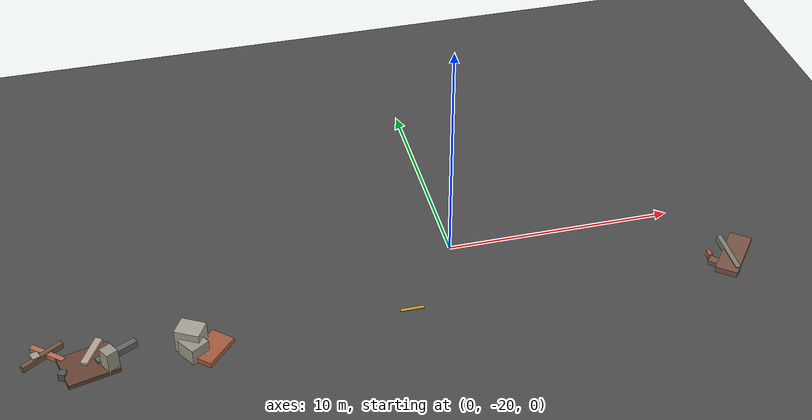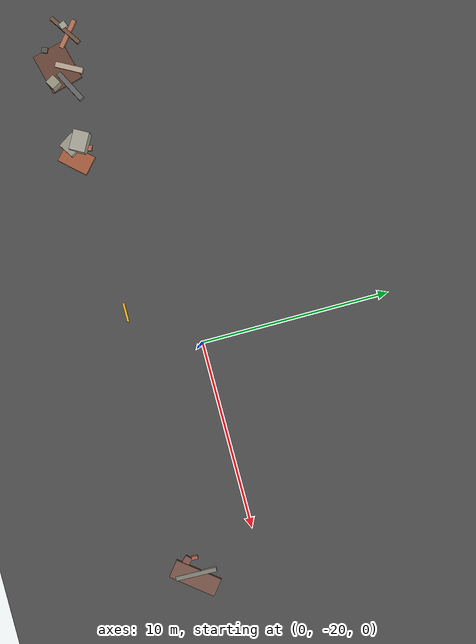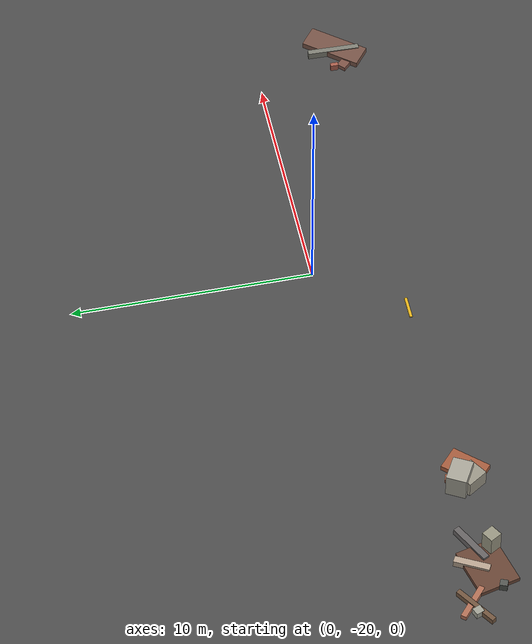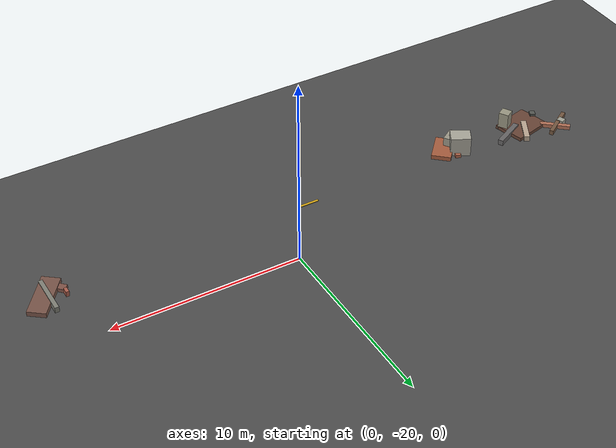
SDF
<sdf version="1.6">
 <world name="navitas_arena">
  <model name="ground_plane">
   <static>true</static>
   <link name="link">
    <collision name="collision">
     <geometry><plane><normal>0 0 1</normal><size>400 400</size></plane></geometry>
     <surface><friction><ode><mu>0.800</mu><mu2>0.800</mu2></ode></friction></surface>
    </collision>
    <visual name="visual">
     <cast_shadows>false</cast_shadows>
     <geometry><plane><normal>0 0 1</normal><size>400 400</size></plane></geometry>
     <material>
      <specular>0.04 0.04 0.04 1</specular>
      <script>
       <uri>file://media/materials/scripts/navitas_asphalt.material</uri>
       <name>Navitas/RealArenaAsphalt</name>
      </script>
     </material>
    </visual>
   </link>
  </model>
  <model name="deb_orta_24">
   <static>true</static>
   <pose>11.225 -23.474 0.000 0 0 0</pose>
   <link name="link">
    <collision name="col_0">
     <pose>0.330 0.058 0.150 0.000 0.000 1.546</pose>
     <geometry><box><size>2.159 0.222 0.301</size></box></geometry>
    </collision>
    <visual name="vis_0">
     <pose>0.330 0.058 0.150 0.000 0.000 1.546</pose>
     <geometry><box><size>2.159 0.222 0.301</size></box></geometry>
     <material>
      <ambient>0.46 0.46 0.43 1</ambient>
      <diffuse>0.50 0.50 0.46 1</diffuse>
      <specular>0.05 0.05 0.045 1</specular>
     </material>
    </visual>
    <collision name="col_1">
     <pose>-0.424 -0.251 0.099 0.000 0.000 2.346</pose>
     <geometry><box><size>0.500 0.389 0.198</size></box></geometry>
    </collision>
    <visual name="vis_1">
     <pose>-0.424 -0.251 0.099 0.000 0.000 2.346</pose>
     <geometry><box><size>0.500 0.389 0.198</size></box></geometry>
     <material>
      <ambient>0.46 0.31 0.26 1</ambient>
      <diffuse>0.50 0.33 0.28 1</diffuse>
      <specular>0.05 0.05 0.045 1</specular>
     </material>
    </visual>
    <collision name="col_2">
     <pose>0.529 -0.041 0.129 0.000 0.000 0.902</pose>
     <geometry><box><size>2.532 0.957 0.258</size></box></geometry>
    </collision>
    <visual name="vis_2">
     <pose>0.529 -0.041 0.129 0.000 0.000 0.902</pose>
     <geometry><box><size>2.532 0.957 0.258</size></box></geometry>
     <material>
      <ambient>0.44 0.31 0.26 1</ambient>
      <diffuse>0.47 0.33 0.28 1</diffuse>
      <specular>0.05 0.05 0.045 1</specular>
     </material>
    </visual>
    <collision name="col_3">
     <pose>-0.507 0.196 0.146 0.000 0.000 1.550</pose>
     <geometry><box><size>0.327 0.175 0.292</size></box></geometry>
    </collision>
    <visual name="vis_3">
     <pose>-0.507 0.196 0.146 0.000 0.000 1.550</pose>
     <geometry><box><size>0.327 0.175 0.292</size></box></geometry>
     <material>
      <ambient>0.62 0.35 0.28 1</ambient>
      <diffuse>0.67 0.37 0.30 1</diffuse>
      <specular>0.05 0.05 0.045 1</specular>
     </material>
    </visual>
   </link>
  </model>
  <model name="deb_orta_170">
   <static>true</static>
   <pose>-17.178 -23.425 0.000 0 0 0</pose>
   <link name="link">
    <collision name="col_0">
     <pose>-0.619 0.722 0.144 0.000 0.000 3.508</pose>
     <geometry><box><size>0.328 0.357 0.288</size></box></geometry>
    </collision>
    <visual name="vis_0">
     <pose>-0.619 0.722 0.144 0.000 0.000 3.508</pose>
     <geometry><box><size>0.328 0.357 0.288</size></box></geometry>
     <material>
      <ambient>0.58 0.58 0.53 1</ambient>
      <diffuse>0.63 0.63 0.58 1</diffuse>
      <specular>0.05 0.05 0.045 1</specular>
     </material>
    </visual>
    <collision name="col_1">
     <pose>0.396 -0.536 0.166 0.000 0.000 2.760</pose>
     <geometry><box><size>0.289 0.314 0.332</size></box></geometry>
    </collision>
    <visual name="vis_1">
     <pose>0.396 -0.536 0.166 0.000 0.000 2.760</pose>
     <geometry><box><size>0.289 0.314 0.332</size></box></geometry>
     <material>
      <ambient>0.31 0.32 0.29 1</ambient>
      <diffuse>0.33 0.34 0.32 1</diffuse>
      <specular>0.05 0.05 0.045 1</specular>
     </material>
    </visual>
    <collision name="col_2">
     <pose>-0.354 0.750 0.129 0.000 0.000 3.728</pose>
     <geometry><box><size>1.926 0.211 0.258</size></box></geometry>
    </collision>
    <visual name="vis_2">
     <pose>-0.354 0.750 0.129 0.000 0.000 3.728</pose>
     <geometry><box><size>1.926 0.211 0.258</size></box></geometry>
     <material>
      <ambient>0.42 0.31 0.23 1</ambient>
      <diffuse>0.45 0.34 0.25 1</diffuse>
      <specular>0.05 0.05 0.045 1</specular>
     </material>
    </visual>
    <collision name="col_3">
     <pose>-0.136 0.827 0.106 0.000 0.000 2.442</pose>
     <geometry><box><size>1.606 0.235 0.212</size></box></geometry>
    </collision>
    <visual name="vis_3">
     <pose>-0.136 0.827 0.106 0.000 0.000 2.442</pose>
     <geometry><box><size>1.606 0.235 0.212</size></box></geometry>
     <material>
      <ambient>0.65 0.41 0.31 1</ambient>
      <diffuse>0.70 0.44 0.34 1</diffuse>
      <specular>0.05 0.05 0.045 1</specular>
     </material>
    </visual>
   </link>
  </model>
  <model name="deb_orta_183">
   <static>true</static>
   <pose>-15.153 -23.293 0.000 0 0 0</pose>
   <link name="link">
    <collision name="col_0">
     <pose>0.513 0.125 0.147 0.000 0.000 3.618</pose>
     <geometry><box><size>1.815 0.280 0.295</size></box></geometry>
    </collision>
    <visual name="vis_0">
     <pose>0.513 0.125 0.147 0.000 0.000 3.618</pose>
     <geometry><box><size>1.815 0.280 0.295</size></box></geometry>
     <material>
      <ambient>0.37 0.36 0.36 1</ambient>
      <diffuse>0.40 0.39 0.39 1</diffuse>
      <specular>0.05 0.05 0.045 1</specular>
     </material>
    </visual>
    <collision name="col_1">
     <pose>0.247 -0.608 0.528 0.000 0.000 3.674</pose>
     <geometry><box><size>0.522 0.533 1.055</size></box></geometry>
    </collision>
    <visual name="vis_1">
     <pose>0.247 -0.608 0.528 0.000 0.000 3.674</pose>
     <geometry><box><size>0.522 0.533 1.055</size></box></geometry>
     <material>
      <ambient>0.55 0.54 0.47 1</ambient>
      <diffuse>0.60 0.59 0.51 1</diffuse>
      <specular>0.05 0.05 0.045 1</specular>
     </material>
    </visual>
    <collision name="col_2">
     <pose>-0.621 -0.265 0.095 0.000 0.000 3.389</pose>
     <geometry><box><size>2.144 1.709 0.191</size></box></geometry>
    </collision>
    <visual name="vis_2">
     <pose>-0.621 -0.265 0.095 0.000 0.000 3.389</pose>
     <geometry><box><size>2.144 1.709 0.191</size></box></geometry>
     <material>
      <ambient>0.38 0.25 0.19 1</ambient>
      <diffuse>0.41 0.27 0.21 1</diffuse>
      <specular>0.05 0.05 0.045 1</specular>
     </material>
    </visual>
    <collision name="col_3">
     <pose>-0.444 0.320 0.149 0.000 0.000 4.221</pose>
     <geometry><box><size>1.459 0.292 0.299</size></box></geometry>
    </collision>
    <visual name="vis_3">
     <pose>-0.444 0.320 0.149 0.000 0.000 4.221</pose>
     <geometry><box><size>1.459 0.292 0.299</size></box></geometry>
     <material>
      <ambient>0.67 0.61 0.53 1</ambient>
      <diffuse>0.73 0.65 0.57 1</diffuse>
      <specular>0.05 0.05 0.045 1</specular>
     </material>
    </visual>
   </link>
  </model>
  <model name="deb_orta_244">
   <static>true</static>
   <pose>-11.438 -23.455 0.000 0 0 0</pose>
   <link name="link">
    <collision name="col_0">
     <pose>-0.178 -0.388 0.356 0.000 0.000 2.145</pose>
     <geometry><box><size>0.918 0.852 0.712</size></box></geometry>
    </collision>
    <visual name="vis_0">
     <pose>-0.178 -0.388 0.356 0.000 0.000 2.145</pose>
     <geometry><box><size>0.918 0.852 0.712</size></box></geometry>
     <material>
      <ambient>0.56 0.54 0.49 1</ambient>
      <diffuse>0.61 0.59 0.53 1</diffuse>
      <specular>0.05 0.05 0.045 1</specular>
     </material>
    </visual>
    <collision name="col_1">
     <pose>-0.290 0.073 0.072 0.000 0.000 1.292</pose>
     <geometry><box><size>0.218 0.319 0.144</size></box></geometry>
    </collision>
    <visual name="vis_1">
     <pose>-0.290 0.073 0.072 0.000 0.000 1.292</pose>
     <geometry><box><size>0.218 0.319 0.144</size></box></geometry>
     <material>
      <ambient>0.56 0.52 0.45 1</ambient>
      <diffuse>0.61 0.57 0.49 1</diffuse>
      <specular>0.05 0.05 0.045 1</specular>
     </material>
    </visual>
    <collision name="col_2">
     <pose>-0.331 -0.116 0.165 0.000 0.000 0.403</pose>
     <geometry><box><size>0.483 0.446 0.329</size></box></geometry>
    </collision>
    <visual name="vis_2">
     <pose>-0.331 -0.116 0.165 0.000 0.000 0.403</pose>
     <geometry><box><size>0.483 0.446 0.329</size></box></geometry>
     <material>
      <ambient>0.35 0.32 0.34 1</ambient>
      <diffuse>0.38 0.34 0.37 1</diffuse>
      <specular>0.05 0.05 0.045 1</specular>
     </material>
    </visual>
    <collision name="col_3">
     <pose>0.530 -0.373 0.118 0.000 0.000 0.835</pose>
     <geometry><box><size>1.655 1.041 0.237</size></box></geometry>
    </collision>
    <visual name="vis_3">
     <pose>0.530 -0.373 0.118 0.000 0.000 0.835</pose>
     <geometry><box><size>1.655 1.041 0.237</size></box></geometry>
     <material>
      <ambient>0.60 0.33 0.22 1</ambient>
      <diffuse>0.65 0.36 0.24 1</diffuse>
      <specular>0.05 0.05 0.045 1</specular>
     </material>
    </visual>
    <collision name="col_4">
     <pose>-0.211 0.060 0.528 0.000 0.000 2.634</pose>
     <geometry><box><size>1.062 0.837 1.056</size></box></geometry>
    </collision>
    <visual name="vis_4">
     <pose>-0.211 0.060 0.528 0.000 0.000 2.634</pose>
     <geometry><box><size>1.062 0.837 1.056</size></box></geometry>
     <material>
      <ambient>0.61 0.60 0.56 1</ambient>
      <diffuse>0.66 0.65 0.60 1</diffuse>
      <specular>0.05 0.05 0.045 1</specular>
     </material>
    </visual>
    <collision name="col_5">
     <pose>0.018 0.049 0.092 0.000 0.000 1.252</pose>
     <geometry><box><size>1.036 0.289 0.183</size></box></geometry>
    </collision>
    <visual name="vis_5">
     <pose>0.018 0.049 0.092 0.000 0.000 1.252</pose>
     <geometry><box><size>1.036 0.289 0.183</size></box></geometry>
     <material>
      <ambient>0.66 0.38 0.28 1</ambient>
      <diffuse>0.71 0.41 0.30 1</diffuse>
      <specular>0.05 0.05 0.045 1</specular>
     </material>
    </visual>
    <collision name="col_6">
     <pose>0.150 -0.297 0.159 0.000 0.000 1.779</pose>
     <geometry><box><size>0.489 0.174 0.318</size></box></geometry>
    </collision>
    <visual name="vis_6">
     <pose>0.150 -0.297 0.159 0.000 0.000 1.779</pose>
     <geometry><box><size>0.489 0.174 0.318</size></box></geometry>
     <material>
      <ambient>0.55 0.30 0.22 1</ambient>
      <diffuse>0.59 0.32 0.24 1</diffuse>
      <specular>0.05 0.05 0.045 1</specular>
     </material>
    </visual>
   </link>
  </model>
  <model name="kb_orta_S">
   <static>true</static>
   <pose>-2.538 -23.440 0.070 0 0 0.000</pose>
   <link name="link">
    <collision name="col"><geometry><box><size>1.000 0.120 0.040</size></box></geometry></collision>
    <visual name="vis">
     <geometry><box><size>1.000 0.120 0.040</size></box></geometry>
     <material>
      <ambient>0.90 0.70 0.10 1</ambient>
      <diffuse>0.90 0.70 0.10 1</diffuse>
      <specular>0.04 0.04 0.04 1</specular>
     </material>
    </visual>
   </link>
  </model>
 </world>
</sdf>
